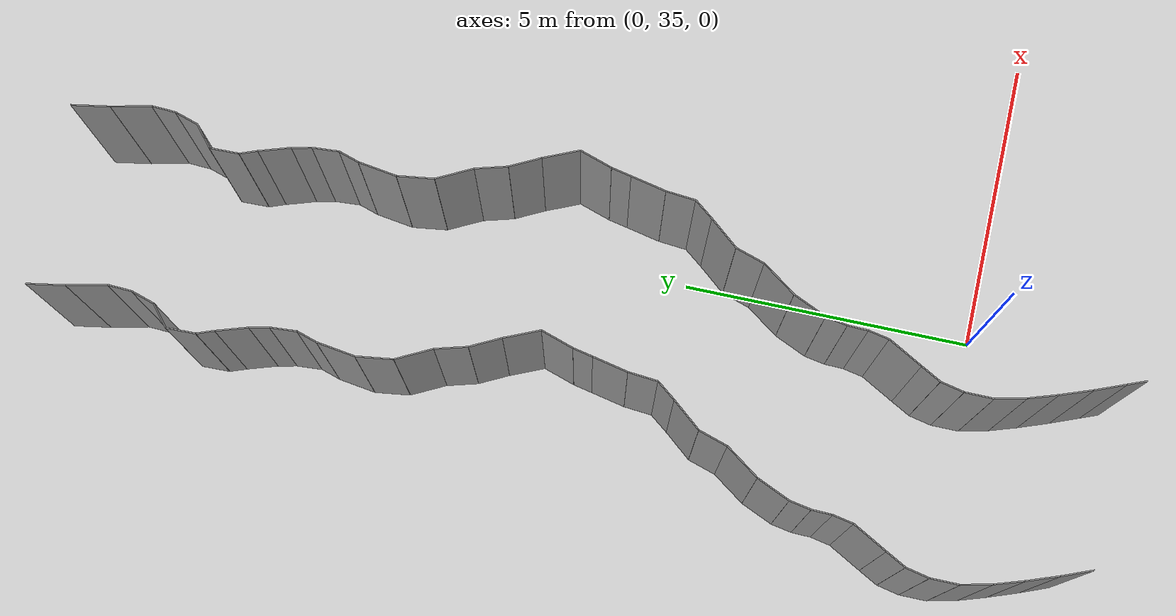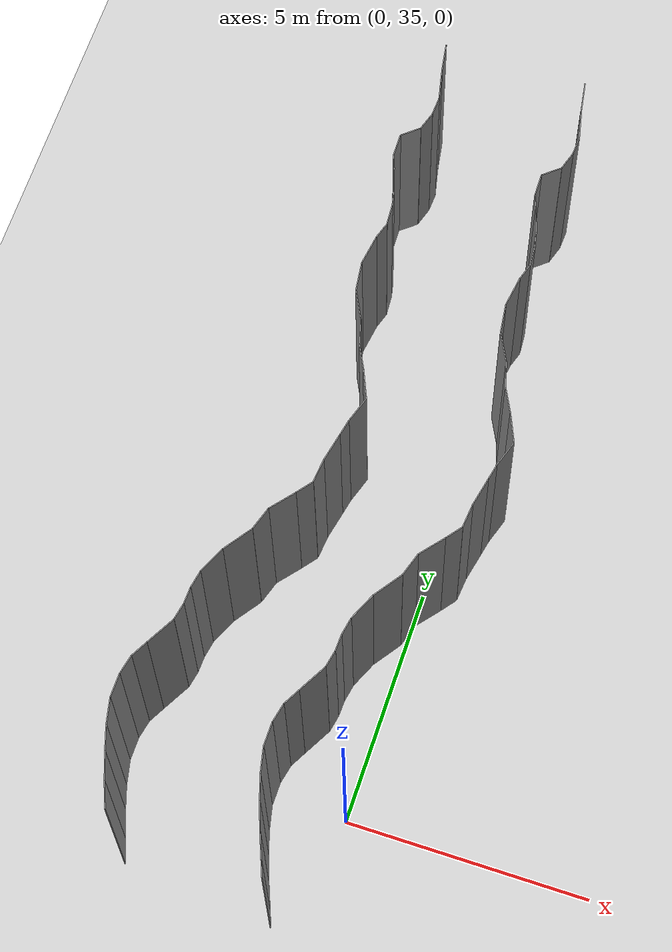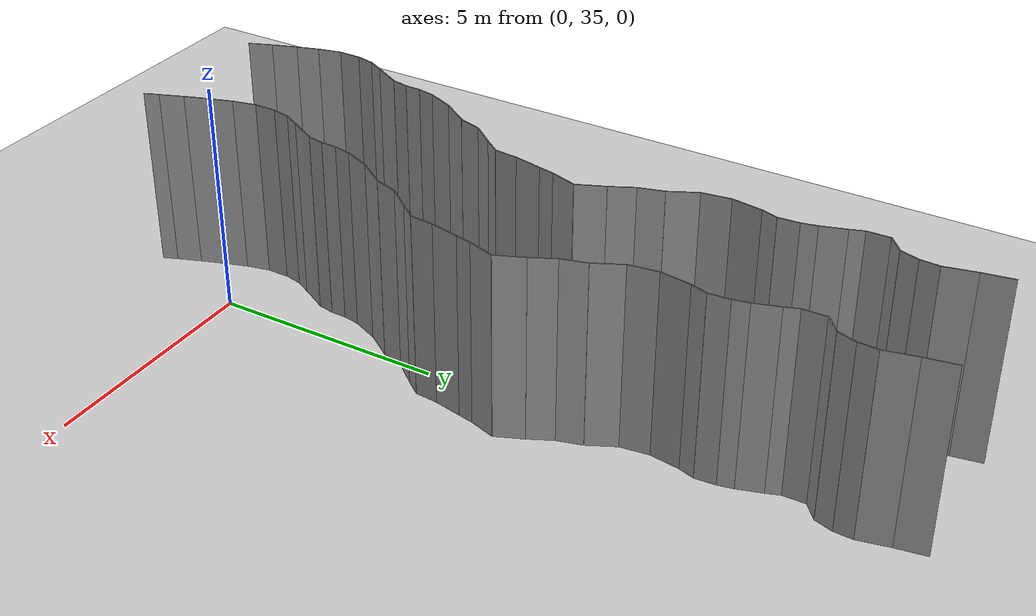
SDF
<sdf version="1.6">
 <world name="default">
  <model name="ground_plane">
   <static>1</static>
   <link name="link">
    <collision name="collision">
     <geometry><plane><normal>0 0 1</normal><size>200 200</size></plane></geometry>
     <surface><friction><ode><mu>100</mu><mu2>50</mu2></ode></friction></surface>
    </collision>
    <visual name="visual">
     <cast_shadows>0</cast_shadows>
     <geometry><plane><normal>0 0 1</normal><size>200 200</size></plane></geometry>
     <material>
      <script><uri>file://media/materials/scripts/gazebo.material</uri><name>Gazebo/Grey</name></script>
     </material>
    </visual>
   </link>
   <pose>0 100 0 0 -0 0</pose>
  </model>
  <model name="wall_149">
   <static>1</static>
   <pose>-0.7892776898225877 32.704849208237995 2 0 0 0.37449090398083174</pose>
   <link name="link">
    <collision name="collision"><geometry><box><size>0.02 0.334689067679 4</size></box></geometry></collision>
    <visual name="visual">
     <material>
      <script><name>Gazebo/Grey</name><uri>file://media/materials/scripts/gazebo.material</uri></script>
     </material>
     <geometry><box><size>0.02 0.334689067679 4</size></box></geometry>
    </visual>
   </link>
  </model>
  <model name="wall_150">
   <static>1</static>
   <pose>-3.948809260127809 33.109536914038294 2 0 0 0.37613784439058984</pose>
   <link name="link">
    <collision name="collision"><geometry><box><size>0.02 0.535305375152 4</size></box></geometry></collision>
    <visual name="visual">
     <material>
      <script><name>Gazebo/Grey</name><uri>file://media/materials/scripts/gazebo.material</uri></script>
     </material>
     <geometry><box><size>0.02 0.535305375152 4</size></box></geometry>
    </visual>
   </link>
  </model>
  <model name="wall_151">
   <static>1</static>
   <pose>-0.9488092601278089 33.109536914038294 2 0 0 0.37613784439058984</pose>
   <link name="link">
    <collision name="collision"><geometry><box><size>0.02 0.535305375152 4</size></box></geometry></collision>
    <visual name="visual">
     <material>
      <script><name>Gazebo/Grey</name><uri>file://media/materials/scripts/gazebo.material</uri></script>
     </material>
     <geometry><box><size>0.02 0.535305375152 4</size></box></geometry>
    </visual>
   </link>
  </model>
  <model name="wall_152">
   <static>1</static>
   <pose>-4.142674920669686 33.62427240499004 2 0 0 0.3450977192572981</pose>
   <link name="link">
    <collision name="collision"><geometry><box><size>0.02 0.564893428046 4</size></box></geometry></collision>
    <visual name="visual">
     <material>
      <script><name>Gazebo/Grey</name><uri>file://media/materials/scripts/gazebo.material</uri></script>
     </material>
     <geometry><box><size>0.02 0.564893428046 4</size></box></geometry>
    </visual>
   </link>
  </model>
  <model name="wall_153">
   <static>1</static>
   <pose>-1.1426749206696858 33.62427240499004 2 0 0 0.3450977192572981</pose>
   <link name="link">
    <collision name="collision"><geometry><box><size>0.02 0.564893428046 4</size></box></geometry></collision>
    <visual name="visual">
     <material>
      <script><name>Gazebo/Grey</name><uri>file://media/materials/scripts/gazebo.material</uri></script>
     </material>
     <geometry><box><size>0.02 0.564893428046 4</size></box></geometry>
    </visual>
   </link>
  </model>
  <model name="wall_154">
   <static>1</static>
   <pose>-4.315053243607579 34.12826984295776 2 0 0 0.31200446942488325</pose>
   <link name="link">
    <collision name="collision"><geometry><box><size>0.02 0.500573824743 4</size></box></geometry></collision>
    <visual name="visual">
     <material>
      <script><name>Gazebo/Grey</name><uri>file://media/materials/scripts/gazebo.material</uri></script>
     </material>
     <geometry><box><size>0.02 0.500573824743 4</size></box></geometry>
    </visual>
   </link>
  </model>
  <model name="wall_155">
   <static>1</static>
   <pose>-1.3150532436075792 34.12826984295776 2 0 0 0.31200446942488325</pose>
   <link name="link">
    <collision name="collision"><geometry><box><size>0.02 0.500573824743 4</size></box></geometry></collision>
    <visual name="visual">
     <material>
      <script><name>Gazebo/Grey</name><uri>file://media/materials/scripts/gazebo.material</uri></script>
     </material>
     <geometry><box><size>0.02 0.500573824743 4</size></box></geometry>
    </visual>
   </link>
  </model>
  <model name="wall_156">
   <static>1</static>
   <pose>-4.4494578135614935 34.6224325958079 2 0 0 0.2212543486907716</pose>
   <link name="link">
    <collision name="collision"><geometry><box><size>0.02 0.524710185642 4</size></box></geometry></collision>
    <visual name="visual">
     <material>
      <script><name>Gazebo/Grey</name><uri>file://media/materials/scripts/gazebo.material</uri></script>
     </material>
     <geometry><box><size>0.02 0.524710185642 4</size></box></geometry>
    </visual>
   </link>
  </model>
  <model name="wall_157">
   <static>1</static>
   <pose>-1.4494578135614935 34.6224325958079 2 0 0 0.2212543486907716</pose>
   <link name="link">
    <collision name="collision"><geometry><box><size>0.02 0.524710185642 4</size></box></geometry></collision>
    <visual name="visual">
     <material>
      <script><name>Gazebo/Grey</name><uri>file://media/materials/scripts/gazebo.material</uri></script>
     </material>
     <geometry><box><size>0.02 0.524710185642 4</size></box></geometry>
    </visual>
   </link>
  </model>
  <model name="wall_158">
   <static>1</static>
   <pose>-4.505637766828674 35.120834678292425 2 0 0 -0.0057530862084733125</pose>
   <link name="link">
    <collision name="collision"><geometry><box><size>0.02 0.484892892523 4</size></box></geometry></collision>
    <visual name="visual">
     <material>
      <script><name>Gazebo/Grey</name><uri>file://media/materials/scripts/gazebo.material</uri></script>
     </material>
     <geometry><box><size>0.02 0.484892892523 4</size></box></geometry>
    </visual>
   </link>
  </model>
  <model name="wall_159">
   <static>1</static>
   <pose>-1.5056377668286736 35.120834678292425 2 0 0 -0.0057530862084733125</pose>
   <link name="link">
    <collision name="collision"><geometry><box><size>0.02 0.484892892523 4</size></box></geometry></collision>
    <visual name="visual">
     <material>
      <script><name>Gazebo/Grey</name><uri>file://media/materials/scripts/gazebo.material</uri></script>
     </material>
     <geometry><box><size>0.02 0.484892892523 4</size></box></geometry>
    </visual>
   </link>
  </model>
  <model name="wall_160">
   <static>1</static>
   <pose>-4.461434183996032 35.56179589270923 2 0 0 -0.21238869510129402</pose>
   <link name="link">
    <collision name="collision"><geometry><box><size>0.02 0.406163993498 4</size></box></geometry></collision>
    <visual name="visual">
     <material>
      <script><name>Gazebo/Grey</name><uri>file://media/materials/scripts/gazebo.material</uri></script>
     </material>
     <geometry><box><size>0.02 0.406163993498 4</size></box></geometry>
    </visual>
   </link>
  </model>
  <model name="wall_161">
   <static>1</static>
   <pose>-1.4614341839960323 35.56179589270923 2 0 0 -0.21238869510129402</pose>
   <link name="link">
    <collision name="collision"><geometry><box><size>0.02 0.406163993498 4</size></box></geometry></collision>
    <visual name="visual">
     <material>
      <script><name>Gazebo/Grey</name><uri>file://media/materials/scripts/gazebo.material</uri></script>
     </material>
     <geometry><box><size>0.02 0.406163993498 4</size></box></geometry>
    </visual>
   </link>
  </model>
  <model name="wall_162">
   <static>1</static>
   <pose>-4.327039735002604 35.929933251628405 2 0 0 -0.4950951092348704</pose>
   <link name="link">
    <collision name="collision"><geometry><box><size>0.02 0.385530272858 4</size></box></geometry></collision>
    <visual name="visual">
     <material>
      <script><name>Gazebo/Grey</name><uri>file://media/materials/scripts/gazebo.material</uri></script>
     </material>
     <geometry><box><size>0.02 0.385530272858 4</size></box></geometry>
    </visual>
   </link>
  </model>
  <model name="wall_163">
   <static>1</static>
   <pose>-1.3270397350026037 35.929933251628405 2 0 0 -0.4950951092348704</pose>
   <link name="link">
    <collision name="collision"><geometry><box><size>0.02 0.385530272858 4</size></box></geometry></collision>
    <visual name="visual">
     <material>
      <script><name>Gazebo/Grey</name><uri>file://media/materials/scripts/gazebo.material</uri></script>
     </material>
     <geometry><box><size>0.02 0.385530272858 4</size></box></geometry>
    </visual>
   </link>
  </model>
  <model name="wall_164">
   <static>1</static>
   <pose>-4.074682581515594 36.39140293427029 2 0 0 -0.5035094975256917</pose>
   <link name="link">
    <collision name="collision"><geometry><box><size>0.02 0.666406889705 4</size></box></geometry></collision>
    <visual name="visual">
     <material>
      <script><name>Gazebo/Grey</name><uri>file://media/materials/scripts/gazebo.material</uri></script>
     </material>
     <geometry><box><size>0.02 0.666406889705 4</size></box></geometry>
    </visual>
   </link>
  </model>
  <model name="wall_165">
   <static>1</static>
   <pose>-1.074682581515594 36.39140293427029 2 0 0 -0.5035094975256917</pose>
   <link name="link">
    <collision name="collision"><geometry><box><size>0.02 0.666406889705 4</size></box></geometry></collision>
    <visual name="visual">
     <material>
      <script><name>Gazebo/Grey</name><uri>file://media/materials/scripts/gazebo.material</uri></script>
     </material>
     <geometry><box><size>0.02 0.666406889705 4</size></box></geometry>
    </visual>
   </link>
  </model>
  <model name="wall_166">
   <static>1</static>
   <pose>-3.8791648242205845 36.85937122466556 2 0 0 -0.1947890821669191</pose>
   <link name="link">
    <collision name="collision"><geometry><box><size>0.02 0.359024049945 4</size></box></geometry></collision>
    <visual name="visual">
     <material>
      <script><name>Gazebo/Grey</name><uri>file://media/materials/scripts/gazebo.material</uri></script>
     </material>
     <geometry><box><size>0.02 0.359024049945 4</size></box></geometry>
    </visual>
   </link>
  </model>
  <model name="wall_167">
   <static>1</static>
   <pose>-0.8791648242205845 36.85937122466556 2 0 0 -0.1947890821669191</pose>
   <link name="link">
    <collision name="collision"><geometry><box><size>0.02 0.359024049945 4</size></box></geometry></collision>
    <visual name="visual">
     <material>
      <script><name>Gazebo/Grey</name><uri>file://media/materials/scripts/gazebo.material</uri></script>
     </material>
     <geometry><box><size>0.02 0.359024049945 4</size></box></geometry>
    </visual>
   </link>
  </model>
  <model name="wall_168">
   <static>1</static>
   <pose>-3.838874124404291 37.20662528716462 2 0 0 -0.0323862615887805</pose>
   <link name="link">
    <collision name="collision"><geometry><box><size>0.02 0.342453331239 4</size></box></geometry></collision>
    <visual name="visual">
     <material>
      <script><name>Gazebo/Grey</name><uri>file://media/materials/scripts/gazebo.material</uri></script>
     </material>
     <geometry><box><size>0.02 0.342453331239 4</size></box></geometry>
    </visual>
   </link>
  </model>
  <model name="wall_169">
   <static>1</static>
   <pose>-0.838874124404291 37.20662528716462 2 0 0 -0.0323862615887805</pose>
   <link name="link">
    <collision name="collision"><geometry><box><size>0.02 0.342453331239 4</size></box></geometry></collision>
    <visual name="visual">
     <material>
      <script><name>Gazebo/Grey</name><uri>file://media/materials/scripts/gazebo.material</uri></script>
     </material>
     <geometry><box><size>0.02 0.342453331239 4</size></box></geometry>
    </visual>
   </link>
  </model>
  <model name="wall_170">
   <static>1</static>
   <pose>-3.7995660983113764 37.56007034824028 2 0 0 -0.18312581977114464</pose>
   <link name="link">
    <collision name="collision"><geometry><box><size>0.02 0.370816694403 4</size></box></geometry></collision>
    <visual name="visual">
     <material>
      <script><name>Gazebo/Grey</name><uri>file://media/materials/scripts/gazebo.material</uri></script>
     </material>
     <geometry><box><size>0.02 0.370816694403 4</size></box></geometry>
    </visual>
   </link>
  </model>
  <model name="wall_171">
   <static>1</static>
   <pose>-0.7995660983113764 37.56007034824028 2 0 0 -0.18312581977114464</pose>
   <link name="link">
    <collision name="collision"><geometry><box><size>0.02 0.370816694403 4</size></box></geometry></collision>
    <visual name="visual">
     <material>
      <script><name>Gazebo/Grey</name><uri>file://media/materials/scripts/gazebo.material</uri></script>
     </material>
     <geometry><box><size>0.02 0.370816694403 4</size></box></geometry>
    </visual>
   </link>
  </model>
  <model name="wall_172">
   <static>1</static>
   <pose>-3.6425029620017595 38.0218955724752 2 0 0 -0.41544175826559615</pose>
   <link name="link">
    <collision name="collision"><geometry><box><size>0.02 0.61100752861 4</size></box></geometry></collision>
    <visual name="visual">
     <material>
      <script><name>Gazebo/Grey</name><uri>file://media/materials/scripts/gazebo.material</uri></script>
     </material>
     <geometry><box><size>0.02 0.61100752861 4</size></box></geometry>
    </visual>
   </link>
  </model>
  <model name="wall_173">
   <static>1</static>
   <pose>-0.6425029620017595 38.0218955724752 2 0 0 -0.41544175826559615</pose>
   <link name="link">
    <collision name="collision"><geometry><box><size>0.02 0.61100752861 4</size></box></geometry></collision>
    <visual name="visual">
     <material>
      <script><name>Gazebo/Grey</name><uri>file://media/materials/scripts/gazebo.material</uri></script>
     </material>
     <geometry><box><size>0.02 0.61100752861 4</size></box></geometry>
    </visual>
   </link>
  </model>
  <model name="wall_174">
   <static>1</static>
   <pose>-3.3207851174008214 38.58383930220559 2 0 0 -0.6124339987571504</pose>
   <link name="link">
    <collision name="collision"><geometry><box><size>0.02 0.690317787748 4</size></box></geometry></collision>
    <visual name="visual">
     <material>
      <script><name>Gazebo/Grey</name><uri>file://media/materials/scripts/gazebo.material</uri></script>
     </material>
     <geometry><box><size>0.02 0.690317787748 4</size></box></geometry>
    </visual>
   </link>
  </model>
  <model name="wall_175">
   <static>1</static>
   <pose>-0.3207851174008214 38.58383930220559 2 0 0 -0.6124339987571504</pose>
   <link name="link">
    <collision name="collision"><geometry><box><size>0.02 0.690317787748 4</size></box></geometry></collision>
    <visual name="visual">
     <material>
      <script><name>Gazebo/Grey</name><uri>file://media/materials/scripts/gazebo.material</uri></script>
     </material>
     <geometry><box><size>0.02 0.690317787748 4</size></box></geometry>
    </visual>
   </link>
  </model>
  <model name="wall_176">
   <static>1</static>
   <pose>-3.045010539513174 39.11165706740095 2 0 0 -0.3053761179482191</pose>
   <link name="link">
    <collision name="collision"><geometry><box><size>0.02 0.514590211569 4</size></box></geometry></collision>
    <visual name="visual">
     <material>
      <script><name>Gazebo/Grey</name><uri>file://media/materials/scripts/gazebo.material</uri></script>
     </material>
     <geometry><box><size>0.02 0.514590211569 4</size></box></geometry>
    </visual>
   </link>
  </model>
  <model name="wall_177">
   <static>1</static>
   <pose>-0.04501053951317413 39.11165706740095 2 0 0 -0.3053761179482191</pose>
   <link name="link">
    <collision name="collision"><geometry><box><size>0.02 0.514590211569 4</size></box></geometry></collision>
    <visual name="visual">
     <material>
      <script><name>Gazebo/Grey</name><uri>file://media/materials/scripts/gazebo.material</uri></script>
     </material>
     <geometry><box><size>0.02 0.514590211569 4</size></box></geometry>
    </visual>
   </link>
  </model>
  <model name="wall_178">
   <static>1</static>
   <pose>-2.7726440527883627 39.59425690751664 2 0 0 -0.6880742895249002</pose>
   <link name="link">
    <collision name="collision"><geometry><box><size>0.02 0.614156281779 4</size></box></geometry></collision>
    <visual name="visual">
     <material>
      <script><name>Gazebo/Grey</name><uri>file://media/materials/scripts/gazebo.material</uri></script>
     </material>
     <geometry><box><size>0.02 0.614156281779 4</size></box></geometry>
    </visual>
   </link>
  </model>
  <model name="wall_179">
   <static>1</static>
   <pose>0.22735594721163732 39.59425690751664 2 0 0 -0.6880742895249002</pose>
   <link name="link">
    <collision name="collision"><geometry><box><size>0.02 0.614156281779 4</size></box></geometry></collision>
    <visual name="visual">
     <material>
      <script><name>Gazebo/Grey</name><uri>file://media/materials/scripts/gazebo.material</uri></script>
     </material>
     <geometry><box><size>0.02 0.614156281779 4</size></box></geometry>
    </visual>
   </link>
  </model>
  <model name="wall_180">
   <static>1</static>
   <pose>-2.4564026558576098 39.988729432395644 2 0 0 -0.6567296938618015</pose>
   <link name="link">
    <collision name="collision"><geometry><box><size>0.02 0.397134174334 4</size></box></geometry></collision>
    <visual name="visual">
     <material>
      <script><name>Gazebo/Grey</name><uri>file://media/materials/scripts/gazebo.material</uri></script>
     </material>
     <geometry><box><size>0.02 0.397134174334 4</size></box></geometry>
    </visual>
   </link>
  </model>
  <model name="wall_181">
   <static>1</static>
   <pose>0.5435973441423902 39.988729432395644 2 0 0 -0.6567296938618015</pose>
   <link name="link">
    <collision name="collision"><geometry><box><size>0.02 0.397134174334 4</size></box></geometry></collision>
    <visual name="visual">
     <material>
      <script><name>Gazebo/Grey</name><uri>file://media/materials/scripts/gazebo.material</uri></script>
     </material>
     <geometry><box><size>0.02 0.397134174334 4</size></box></geometry>
    </visual>
   </link>
  </model>
  <model name="wall_182">
   <static>1</static>
   <pose>-2.3125439787578617 40.39504041526889 2 0 0 -0.09060749659054476</pose>
   <link name="link">
    <collision name="collision"><geometry><box><size>0.02 0.500146071569 4</size></box></geometry></collision>
    <visual name="visual">
     <material>
      <script><name>Gazebo/Grey</name><uri>file://media/materials/scripts/gazebo.material</uri></script>
     </material>
     <geometry><box><size>0.02 0.500146071569 4</size></box></geometry>
    </visual>
   </link>
  </model>
  <model name="wall_183">
   <static>1</static>
   <pose>0.6874560212421383 40.39504041526889 2 0 0 -0.09060749659054476</pose>
   <link name="link">
    <collision name="collision"><geometry><box><size>0.02 0.500146071569 4</size></box></geometry></collision>
    <visual name="visual">
     <material>
      <script><name>Gazebo/Grey</name><uri>file://media/materials/scripts/gazebo.material</uri></script>
     </material>
     <geometry><box><size>0.02 0.500146071569 4</size></box></geometry>
    </visual>
   </link>
  </model>
  <model name="wall_184">
   <static>1</static>
   <pose>-2.2266220915654666 40.94343411890724 2 0 0 -0.20837278285419442</pose>
   <link name="link">
    <collision name="collision"><geometry><box><size>0.02 0.611929716924 4</size></box></geometry></collision>
    <visual name="visual">
     <material>
      <script><name>Gazebo/Grey</name><uri>file://media/materials/scripts/gazebo.material</uri></script>
     </material>
     <geometry><box><size>0.02 0.611929716924 4</size></box></geometry>
    </visual>
   </link>
  </model>
  <model name="wall_185">
   <static>1</static>
   <pose>0.7733779084345334 40.94343411890724 2 0 0 -0.20837278285419442</pose>
   <link name="link">
    <collision name="collision"><geometry><box><size>0.02 0.611929716924 4</size></box></geometry></collision>
    <visual name="visual">
     <material>
      <script><name>Gazebo/Grey</name><uri>file://media/materials/scripts/gazebo.material</uri></script>
     </material>
     <geometry><box><size>0.02 0.611929716924 4</size></box></geometry>
    </visual>
   </link>
  </model>
  <model name="wall_186">
   <static>1</static>
   <pose>-2.128738098193758 41.40969219846519 2 0 0 -0.2043406867814975</pose>
   <link name="link">
    <collision name="collision"><geometry><box><size>0.02 0.34091595961 4</size></box></geometry></collision>
    <visual name="visual">
     <material>
      <script><name>Gazebo/Grey</name><uri>file://media/materials/scripts/gazebo.material</uri></script>
     </material>
     <geometry><box><size>0.02 0.34091595961 4</size></box></geometry>
    </visual>
   </link>
  </model>
  <model name="wall_187">
   <static>1</static>
   <pose>0.8712619018062422 41.40969219846519 2 0 0 -0.2043406867814975</pose>
   <link name="link">
    <collision name="collision"><geometry><box><size>0.02 0.34091595961 4</size></box></geometry></collision>
    <visual name="visual">
     <material>
      <script><name>Gazebo/Grey</name><uri>file://media/materials/scripts/gazebo.material</uri></script>
     </material>
     <geometry><box><size>0.02 0.34091595961 4</size></box></geometry>
    </visual>
   </link>
  </model>
  <model name="wall_188">
   <static>1</static>
   <pose>-2.0054563466827693 41.852005461859584 2 0 0 -0.3115582514727673</pose>
   <link name="link">
    <collision name="collision"><geometry><box><size>0.02 0.578661811721 4</size></box></geometry></collision>
    <visual name="visual">
     <material>
      <script><name>Gazebo/Grey</name><uri>file://media/materials/scripts/gazebo.material</uri></script>
     </material>
     <geometry><box><size>0.02 0.578661811721 4</size></box></geometry>
    </visual>
   </link>
  </model>
  <model name="wall_189">
   <static>1</static>
   <pose>0.9945436533172307 41.852005461859584 2 0 0 -0.3115582514727673</pose>
   <link name="link">
    <collision name="collision"><geometry><box><size>0.02 0.578661811721 4</size></box></geometry></collision>
    <visual name="visual">
     <material>
      <script><name>Gazebo/Grey</name><uri>file://media/materials/scripts/gazebo.material</uri></script>
     </material>
     <geometry><box><size>0.02 0.578661811721 4</size></box></geometry>
    </visual>
   </link>
  </model>
  <model name="wall_190">
   <static>1</static>
   <pose>-2.042100634272677 42.4193847715467 2 0 0 0.40547946077160735</pose>
   <link name="link">
    <collision name="collision"><geometry><box><size>0.02 0.635484591752 4</size></box></geometry></collision>
    <visual name="visual">
     <material>
      <script><name>Gazebo/Grey</name><uri>file://media/materials/scripts/gazebo.material</uri></script>
     </material>
     <geometry><box><size>0.02 0.635484591752 4</size></box></geometry>
    </visual>
   </link>
  </model>
  <model name="wall_191">
   <static>1</static>
   <pose>0.9578993657273229 42.4193847715467 2 0 0 0.40547946077160735</pose>
   <link name="link">
    <collision name="collision"><geometry><box><size>0.02 0.635484591752 4</size></box></geometry></collision>
    <visual name="visual">
     <material>
      <script><name>Gazebo/Grey</name><uri>file://media/materials/scripts/gazebo.material</uri></script>
     </material>
     <geometry><box><size>0.02 0.635484591752 4</size></box></geometry>
    </visual>
   </link>
  </model>
  <model name="wall_192">
   <static>1</static>
   <pose>-2.292439568281773 42.960722847088384 2 0 0 0.46468103861668975</pose>
   <link name="link">
    <collision name="collision"><geometry><box><size>0.02 0.557875432859 4</size></box></geometry></collision>
    <visual name="visual">
     <material>
      <script><name>Gazebo/Grey</name><uri>file://media/materials/scripts/gazebo.material</uri></script>
     </material>
     <geometry><box><size>0.02 0.557875432859 4</size></box></geometry>
    </visual>
   </link>
  </model>
  <model name="wall_193">
   <static>1</static>
   <pose>0.7075604317182269 42.960722847088384 2 0 0 0.46468103861668975</pose>
   <link name="link">
    <collision name="collision"><geometry><box><size>0.02 0.557875432859 4</size></box></geometry></collision>
    <visual name="visual">
     <material>
      <script><name>Gazebo/Grey</name><uri>file://media/materials/scripts/gazebo.material</uri></script>
     </material>
     <geometry><box><size>0.02 0.557875432859 4</size></box></geometry>
    </visual>
   </link>
  </model>
  <model name="wall_194">
   <static>1</static>
   <pose>-2.491129693867537 43.47578672479157 2 0 0 0.27053140163089406</pose>
   <link name="link">
    <collision name="collision"><geometry><box><size>0.02 0.551464188948 4</size></box></geometry></collision>
    <visual name="visual">
     <material>
      <script><name>Gazebo/Grey</name><uri>file://media/materials/scripts/gazebo.material</uri></script>
     </material>
     <geometry><box><size>0.02 0.551464188948 4</size></box></geometry>
    </visual>
   </link>
  </model>
  <model name="wall_195">
   <static>1</static>
   <pose>0.5088703061324629 43.47578672479157 2 0 0 0.27053140163089406</pose>
   <link name="link">
    <collision name="collision"><geometry><box><size>0.02 0.551464188948 4</size></box></geometry></collision>
    <visual name="visual">
     <material>
      <script><name>Gazebo/Grey</name><uri>file://media/materials/scripts/gazebo.material</uri></script>
     </material>
     <geometry><box><size>0.02 0.551464188948 4</size></box></geometry>
    </visual>
   </link>
  </model>
  <model name="wall_196">
   <static>1</static>
   <pose>-2.711973880012107 44.034313331818126 2 0 0 0.4656808490476996</pose>
   <link name="link">
    <collision name="collision"><geometry><box><size>0.02 0.655440177734 4</size></box></geometry></collision>
    <visual name="visual">
     <material>
      <script><name>Gazebo/Grey</name><uri>file://media/materials/scripts/gazebo.material</uri></script>
     </material>
     <geometry><box><size>0.02 0.655440177734 4</size></box></geometry>
    </visual>
   </link>
  </model>
  <model name="wall_197">
   <static>1</static>
   <pose>0.28802611998789285 44.034313331818126 2 0 0 0.4656808490476996</pose>
   <link name="link">
    <collision name="collision"><geometry><box><size>0.02 0.655440177734 4</size></box></geometry></collision>
    <visual name="visual">
     <material>
      <script><name>Gazebo/Grey</name><uri>file://media/materials/scripts/gazebo.material</uri></script>
     </material>
     <geometry><box><size>0.02 0.655440177734 4</size></box></geometry>
    </visual>
   </link>
  </model>
  <model name="wall_198">
   <static>1</static>
   <pose>-2.899665627789191 44.63312865351976 2 0 0 0.13170447834071963</pose>
   <link name="link">
    <collision name="collision"><geometry><box><size>0.02 0.617330720508 4</size></box></geometry></collision>
    <visual name="visual">
     <material>
      <script><name>Gazebo/Grey</name><uri>file://media/materials/scripts/gazebo.material</uri></script>
     </material>
     <geometry><box><size>0.02 0.617330720508 4</size></box></geometry>
    </visual>
   </link>
  </model>
  <model name="wall_199">
   <static>1</static>
   <pose>0.10033437221080899 44.63312865351976 2 0 0 0.13170447834071963</pose>
   <link name="link">
    <collision name="collision"><geometry><box><size>0.02 0.617330720508 4</size></box></geometry></collision>
    <visual name="visual">
     <material>
      <script><name>Gazebo/Grey</name><uri>file://media/materials/scripts/gazebo.material</uri></script>
     </material>
     <geometry><box><size>0.02 0.617330720508 4</size></box></geometry>
    </visual>
   </link>
  </model>
  <model name="wall_200">
   <static>1</static>
   <pose>-2.8926894104506085 45.262381069368814 2 0 0 -0.14593089362502157</pose>
   <link name="link">
    <collision name="collision"><geometry><box><size>0.02 0.65346621906 4</size></box></geometry></collision>
    <visual name="visual">
     <material>
      <script><name>Gazebo/Grey</name><uri>file://media/materials/scripts/gazebo.material</uri></script>
     </material>
     <geometry><box><size>0.02 0.65346621906 4</size></box></geometry>
    </visual>
   </link>
  </model>
  <model name="wall_201">
   <static>1</static>
   <pose>0.10731058954939154 45.262381069368814 2 0 0 -0.14593089362502157</pose>
   <link name="link">
    <collision name="collision"><geometry><box><size>0.02 0.65346621906 4</size></box></geometry></collision>
    <visual name="visual">
     <material>
      <script><name>Gazebo/Grey</name><uri>file://media/materials/scripts/gazebo.material</uri></script>
     </material>
     <geometry><box><size>0.02 0.65346621906 4</size></box></geometry>
    </visual>
   </link>
  </model>
  <model name="wall_202">
   <static>1</static>
   <pose>-2.7912926008834065 45.756904003118954 2 0 0 -0.3048296614981764</pose>
   <link name="link">
    <collision name="collision"><geometry><box><size>0.02 0.359079616523 4</size></box></geometry></collision>
    <visual name="visual">
     <material>
      <script><name>Gazebo/Grey</name><uri>file://media/materials/scripts/gazebo.material</uri></script>
     </material>
     <geometry><box><size>0.02 0.359079616523 4</size></box></geometry>
    </visual>
   </link>
  </model>
  <model name="wall_203">
   <static>1</static>
   <pose>0.20870739911659353 45.756904003118954 2 0 0 -0.3048296614981764</pose>
   <link name="link">
    <collision name="collision"><geometry><box><size>0.02 0.359079616523 4</size></box></geometry></collision>
    <visual name="visual">
     <material>
      <script><name>Gazebo/Grey</name><uri>file://media/materials/scripts/gazebo.material</uri></script>
     </material>
     <geometry><box><size>0.02 0.359079616523 4</size></box></geometry>
    </visual>
   </link>
  </model>
  <model name="wall_204">
   <static>1</static>
   <pose>-2.7523751308458033 46.14920960713033 2 0 0 0.06761185586232696</pose>
   <link name="link">
    <collision name="collision"><geometry><box><size>0.02 0.443098243297 4</size></box></geometry></collision>
    <visual name="visual">
     <material>
      <script><name>Gazebo/Grey</name><uri>file://media/materials/scripts/gazebo.material</uri></script>
     </material>
     <geometry><box><size>0.02 0.443098243297 4</size></box></geometry>
    </visual>
   </link>
  </model>
  <model name="wall_205">
   <static>1</static>
   <pose>0.24762486915419668 46.14920960713033 2 0 0 0.06761185586232696</pose>
   <link name="link">
    <collision name="collision"><geometry><box><size>0.02 0.443098243297 4</size></box></geometry></collision>
    <visual name="visual">
     <material>
      <script><name>Gazebo/Grey</name><uri>file://media/materials/scripts/gazebo.material</uri></script>
     </material>
     <geometry><box><size>0.02 0.443098243297 4</size></box></geometry>
    </visual>
   </link>
  </model>
  <model name="wall_206">
   <static>1</static>
   <pose>-2.802446100665872 46.5324693255604 2 0 0 0.21310990389237605</pose>
   <link name="link">
    <collision name="collision"><geometry><box><size>0.02 0.3319428346 4</size></box></geometry></collision>
    <visual name="visual">
     <material>
      <script><name>Gazebo/Grey</name><uri>file://media/materials/scripts/gazebo.material</uri></script>
     </material>
     <geometry><box><size>0.02 0.3319428346 4</size></box></geometry>
    </visual>
   </link>
  </model>
  <model name="wall_207">
   <static>1</static>
   <pose>0.19755389933412815 46.5324693255604 2 0 0 0.21310990389237605</pose>
   <link name="link">
    <collision name="collision"><geometry><box><size>0.02 0.3319428346 4</size></box></geometry></collision>
    <visual name="visual">
     <material>
      <script><name>Gazebo/Grey</name><uri>file://media/materials/scripts/gazebo.material</uri></script>
     </material>
     <geometry><box><size>0.02 0.3319428346 4</size></box></geometry>
    </visual>
   </link>
  </model>
  <model name="wall_208">
   <static>1</static>
   <pose>-2.919280490812267 46.953388514761926 2 0 0 0.3060049275418062</pose>
   <link name="link">
    <collision name="collision"><geometry><box><size>0.02 0.542611993081 4</size></box></geometry></collision>
    <visual name="visual">
     <material>
      <script><name>Gazebo/Grey</name><uri>file://media/materials/scripts/gazebo.material</uri></script>
     </material>
     <geometry><box><size>0.02 0.542611993081 4</size></box></geometry>
    </visual>
   </link>
  </model>
  <model name="wall_209">
   <static>1</static>
   <pose>0.08071950918773307 46.953388514761926 2 0 0 0.3060049275418062</pose>
   <link name="link">
    <collision name="collision"><geometry><box><size>0.02 0.542611993081 4</size></box></geometry></collision>
    <visual name="visual">
     <material>
      <script><name>Gazebo/Grey</name><uri>file://media/materials/scripts/gazebo.material</uri></script>
     </material>
     <geometry><box><size>0.02 0.542611993081 4</size></box></geometry>
    </visual>
   </link>
  </model>
  <model name="wall_210">
   <static>1</static>
   <pose>-3.0529548870642444 47.35448068768838 2 0 0 0.34979369279560596</pose>
   <link name="link">
    <collision name="collision"><geometry><box><size>0.02 0.303136459388 4</size></box></geometry></collision>
    <visual name="visual">
     <material>
      <script><name>Gazebo/Grey</name><uri>file://media/materials/scripts/gazebo.material</uri></script>
     </material>
     <geometry><box><size>0.02 0.303136459388 4</size></box></geometry>
    </visual>
   </link>
  </model>
  <model name="wall_211">
   <static>1</static>
   <pose>-0.05295488706424445 47.35448068768838 2 0 0 0.34979369279560596</pose>
   <link name="link">
    <collision name="collision"><geometry><box><size>0.02 0.303136459388 4</size></box></geometry></collision>
    <visual name="visual">
     <material>
      <script><name>Gazebo/Grey</name><uri>file://media/materials/scripts/gazebo.material</uri></script>
     </material>
     <geometry><box><size>0.02 0.303136459388 4</size></box></geometry>
    </visual>
   </link>
  </model>
  <model name="wall_212">
   <static>1</static>
   <pose>-3.1097217375445214 47.7403030544922 2 0 0 0.019813208112904598</pose>
   <link name="link">
    <collision name="collision"><geometry><box><size>0.02 0.486960755196 4</size></box></geometry></collision>
    <visual name="visual">
     <material>
      <script><name>Gazebo/Grey</name><uri>file://media/materials/scripts/gazebo.material</uri></script>
     </material>
     <geometry><box><size>0.02 0.486960755196 4</size></box></geometry>
    </visual>
   </link>
  </model>
  <model name="wall_213">
   <static>1</static>
   <pose>-0.10972173754452141 47.7403030544922 2 0 0 0.019813208112904598</pose>
   <link name="link">
    <collision name="collision"><geometry><box><size>0.02 0.486960755196 4</size></box></geometry></collision>
    <visual name="visual">
     <material>
      <script><name>Gazebo/Grey</name><uri>file://media/materials/scripts/gazebo.material</uri></script>
     </material>
     <geometry><box><size>0.02 0.486960755196 4</size></box></geometry>
    </visual>
   </link>
  </model>
  <model name="wall_214">
   <static>1</static>
   <pose>-2.943529544816595 48.1246244634919 2 0 0 -0.8816903938771686</pose>
   <link name="link">
    <collision name="collision"><geometry><box><size>0.02 0.443152946747 4</size></box></geometry></collision>
    <visual name="visual">
     <material>
      <script><name>Gazebo/Grey</name><uri>file://media/materials/scripts/gazebo.material</uri></script>
     </material>
     <geometry><box><size>0.02 0.443152946747 4</size></box></geometry>
    </visual>
   </link>
  </model>
  <model name="wall_215">
   <static>1</static>
   <pose>0.05647045518340521 48.1246244634919 2 0 0 -0.8816903938771686</pose>
   <link name="link">
    <collision name="collision"><geometry><box><size>0.02 0.443152946747 4</size></box></geometry></collision>
    <visual name="visual">
     <material>
      <script><name>Gazebo/Grey</name><uri>file://media/materials/scripts/gazebo.material</uri></script>
     </material>
     <geometry><box><size>0.02 0.443152946747 4</size></box></geometry>
    </visual>
   </link>
  </model>
  <model name="wall_216">
   <static>1</static>
   <pose>-2.711002390141287 48.46185433263491 2 0 0 -0.3036019314396584</pose>
   <link name="link">
    <collision name="collision"><geometry><box><size>0.02 0.411501781068 4</size></box></geometry></collision>
    <visual name="visual">
     <material>
      <script><name>Gazebo/Grey</name><uri>file://media/materials/scripts/gazebo.material</uri></script>
     </material>
     <geometry><box><size>0.02 0.411501781068 4</size></box></geometry>
    </visual>
   </link>
  </model>
  <model name="wall_217">
   <static>1</static>
   <pose>0.28899760985871303 48.46185433263491 2 0 0 -0.3036019314396584</pose>
   <link name="link">
    <collision name="collision"><geometry><box><size>0.02 0.411501781068 4</size></box></geometry></collision>
    <visual name="visual">
     <material>
      <script><name>Gazebo/Grey</name><uri>file://media/materials/scripts/gazebo.material</uri></script>
     </material>
     <geometry><box><size>0.02 0.411501781068 4</size></box></geometry>
    </visual>
   </link>
  </model>
  <model name="wall_218">
   <static>1</static>
   <pose>-2.6395973024196797 48.85765242258943 2 0 0 -0.049563727883277724</pose>
   <link name="link">
    <collision name="collision"><geometry><box><size>0.02 0.39940456358 4</size></box></geometry></collision>
    <visual name="visual">
     <material>
      <script><name>Gazebo/Grey</name><uri>file://media/materials/scripts/gazebo.material</uri></script>
     </material>
     <geometry><box><size>0.02 0.39940456358 4</size></box></geometry>
    </visual>
   </link>
  </model>
  <model name="wall_219">
   <static>1</static>
   <pose>0.3604026975803203 48.85765242258943 2 0 0 -0.049563727883277724</pose>
   <link name="link">
    <collision name="collision"><geometry><box><size>0.02 0.39940456358 4</size></box></geometry></collision>
    <visual name="visual">
     <material>
      <script><name>Gazebo/Grey</name><uri>file://media/materials/scripts/gazebo.material</uri></script>
     </material>
     <geometry><box><size>0.02 0.39940456358 4</size></box></geometry>
    </visual>
   </link>
  </model>
  <model name="wall_220">
   <static>1</static>
   <pose>-2.7024540921958886 49.383948559591616 2 0 0 0.21901826105031877</pose>
   <link name="link">
    <collision name="collision"><geometry><box><size>0.02 0.669675929863 4</size></box></geometry></collision>
    <visual name="visual">
     <material>
      <script><name>Gazebo/Grey</name><uri>file://media/materials/scripts/gazebo.material</uri></script>
     </material>
     <geometry><box><size>0.02 0.669675929863 4</size></box></geometry>
    </visual>
   </link>
  </model>
  <model name="wall_221">
   <static>1</static>
   <pose>0.2975459078041114 49.383948559591616 2 0 0 0.21901826105031877</pose>
   <link name="link">
    <collision name="collision"><geometry><box><size>0.02 0.669675929863 4</size></box></geometry></collision>
    <visual name="visual">
     <material>
      <script><name>Gazebo/Grey</name><uri>file://media/materials/scripts/gazebo.material</uri></script>
     </material>
     <geometry><box><size>0.02 0.669675929863 4</size></box></geometry>
    </visual>
   </link>
  </model>
  <model name="wall_222">
   <static>1</static>
   <pose>-2.8285108046227343 50.02675698191476 2 0 0 0.16713243163091884</pose>
   <link name="link">
    <collision name="collision"><geometry><box><size>0.02 0.640868608866 4</size></box></geometry></collision>
    <visual name="visual">
     <material>
      <script><name>Gazebo/Grey</name><uri>file://media/materials/scripts/gazebo.material</uri></script>
     </material>
     <geometry><box><size>0.02 0.640868608866 4</size></box></geometry>
    </visual>
   </link>
  </model>
  <model name="wall_223">
   <static>1</static>
   <pose>0.1714891953772657 50.02675698191476 2 0 0 0.16713243163091884</pose>
   <link name="link">
    <collision name="collision"><geometry><box><size>0.02 0.640868608866 4</size></box></geometry></collision>
    <visual name="visual">
     <material>
      <script><name>Gazebo/Grey</name><uri>file://media/materials/scripts/gazebo.material</uri></script>
     </material>
     <geometry><box><size>0.02 0.640868608866 4</size></box></geometry>
    </visual>
   </link>
  </model>
 </world>
</sdf>
